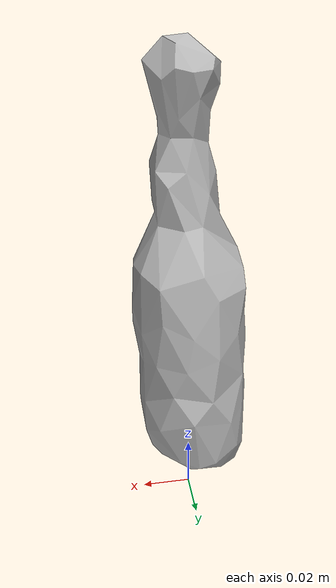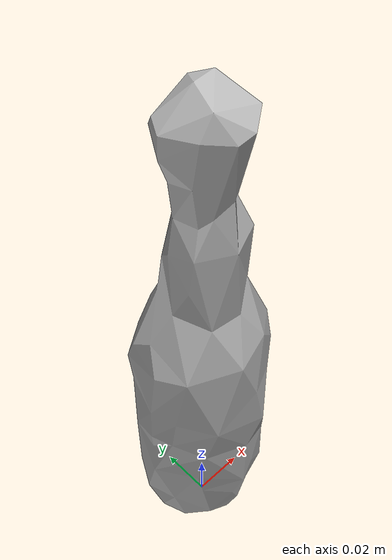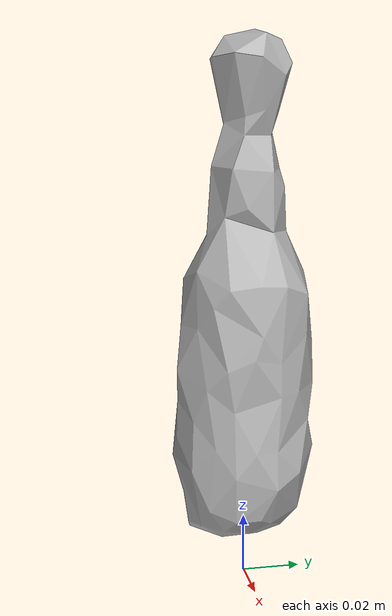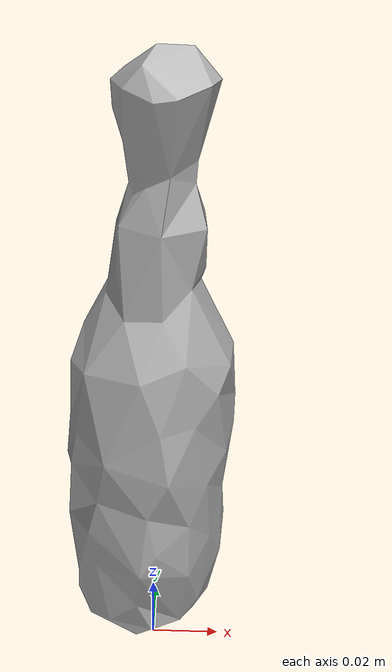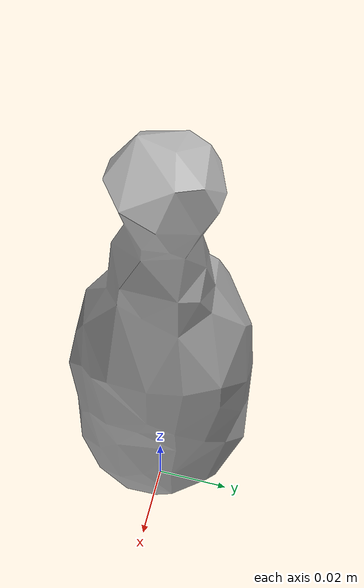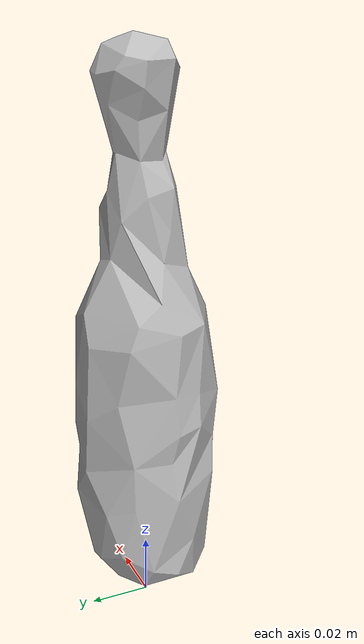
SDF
<?xml version='1.0'?>
<sdf version="1.4">
  <model name="cholula_chipotle_hot_sauce">
    <static>false</static>
    <link name="link">
      <inertial>
        <pose>-0.00014436353098133006 0.0014185911579525617 0.07933470281575629 -3.1078580653273753 0.0223361182407063 1.3640838268773923</pose>
        <mass>0.02623282392945838</mass>
        <inertia>
          <ixx>5.971404706041841e-05</ixx>
          <ixy>3.0102617693102685e-21</ixy>
          <ixz>3.582045630012294e-21</ixz>
          <iyy>5.959020047985964e-05</iyy>
          <iyz>4.064806131175832e-22</iyz>
          <izz>7.07357626337395e-06</izz>
        </inertia>
      </inertial>
      <collision name="collision">
        <geometry>
          <mesh>
            <!-- Use a downsampled mesh for collisions -->
            <uri>model:///cholula_chipotle_hot_sauce/cholula_chipotle_hot_sauce_250_collision.obj</uri>
	        </mesh>
        </geometry>
        <surface>
      </surface>
      </collision>
      <visual name="visual">
        <geometry>
          <mesh>
            <uri>model:///cholula_chipotle_hot_sauce/optimized_tsdf_texture_mapped_mesh.obj</uri>
	        </mesh>
        </geometry>
        <material>
          <script>
            <uri>model:///cholula_chipotle_hot_sauce/cholula_chipotle_hot_sauce.material</uri>
            <name>cholula_chipotle_hot_sauce</name>
          </script>
        </material>
      </visual>
    </link>
  </model>
</sdf>
